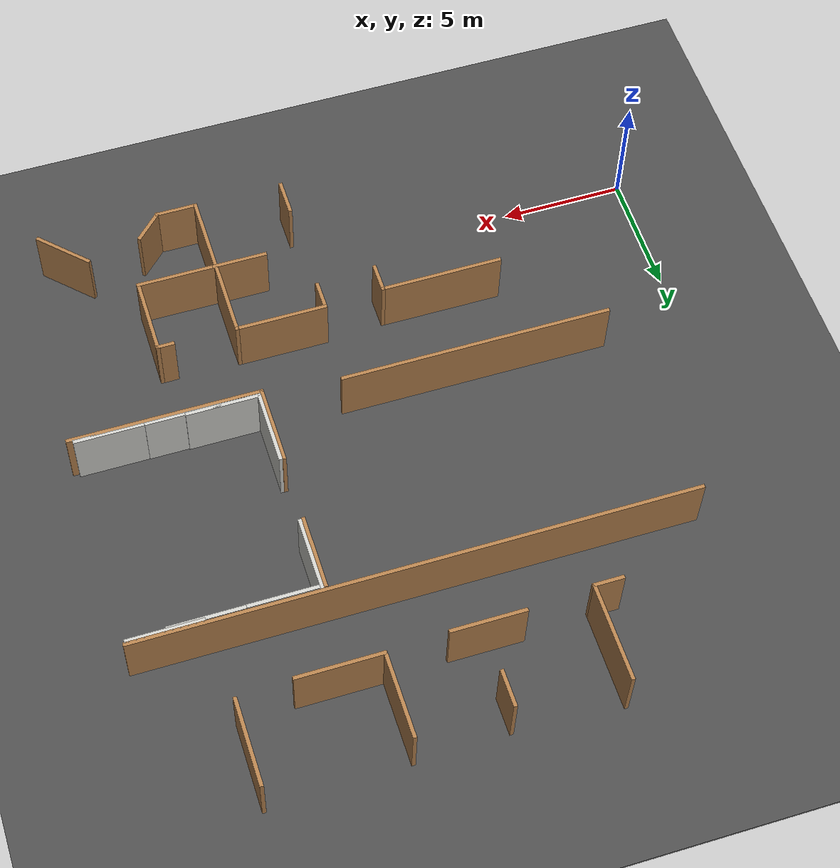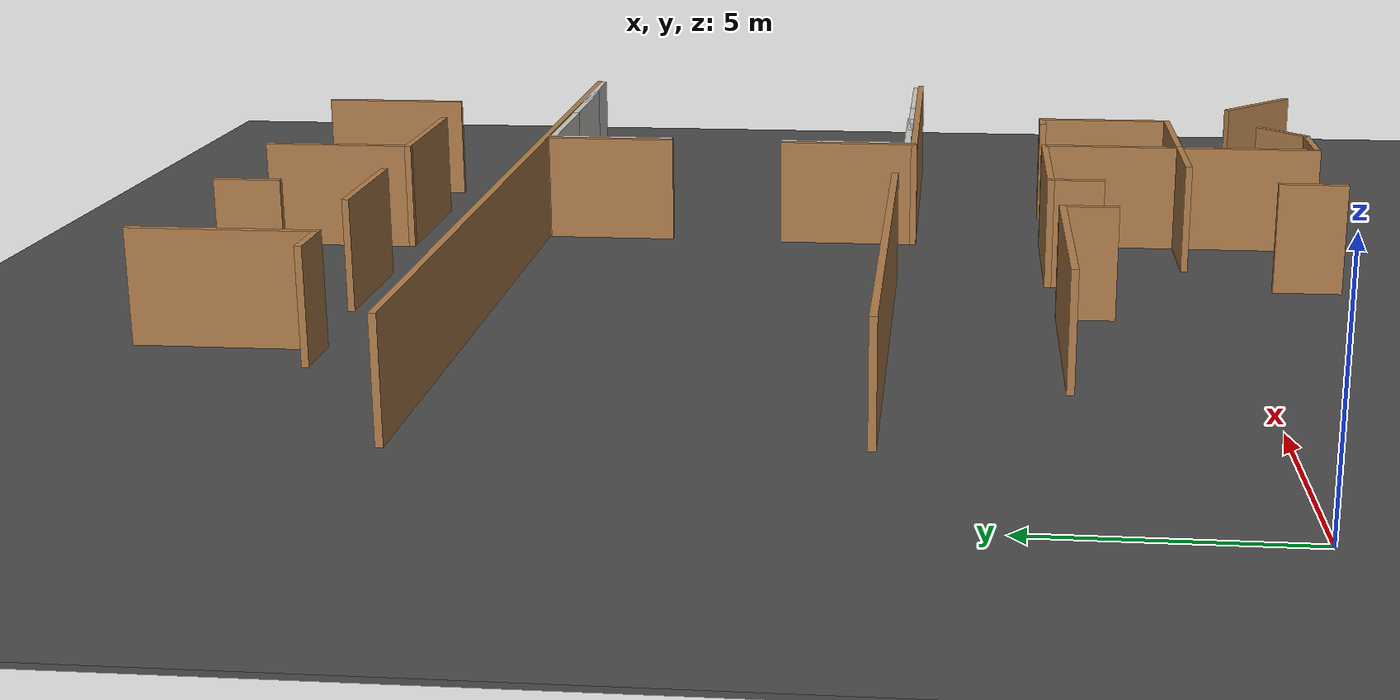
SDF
<sdf version="1.6">
 <world name="default">
  <model name="ground_plane">
   <static>1</static>
   <link name="link">
    <collision name="collision">
     <geometry><plane><normal>0 0 1</normal><size>100 100</size></plane></geometry>
     <surface><friction><ode><mu>100</mu><mu2>50</mu2></ode></friction></surface>
    </collision>
    <visual name="visual">
     <cast_shadows>0</cast_shadows>
     <geometry><plane><normal>0 0 1</normal><size>100 100</size></plane></geometry>
     <material>
      <script><uri>file://media/materials/scripts/gazebo.material</uri><name>Gazebo/Grey</name></script>
     </material>
    </visual>
   </link>
  </model>
  <model name="asphalt_plane">
   <static>1</static>
   <link name="link">
    <collision name="collision"><geometry><box><size>100 100 0.1</size></box></geometry></collision>
    <visual name="visual">
     <cast_shadows>0</cast_shadows>
     <geometry><box><size>100 100 0.1</size></box></geometry>
     <material>
      <script>
       <uri>model://asphalt_plane/materials/scripts</uri>
       <uri>model://asphalt_plane/materials/textures</uri>
       <name>vrc/asphalt</name>
      </script>
     </material>
    </visual>
   </link>
  </model>
  <model name="concrete_wall_6_clone_15">
   <pose>19.0082 7.09385 0 0 -0 1.57079</pose>
   <link name="Wall_0">
    <collision name="Wall_0_Collision">
     <geometry><box><size>3 0.15 2.5</size></box></geometry>
     <pose>0 0 1.25 0 -0 0</pose>
    </collision>
    <visual name="Wall_0_Visual">
     <pose>0 0 1.25 0 -0 0</pose>
     <geometry><box><size>3 0.15 2.5</size></box></geometry>
     <material>
      <script><uri>file://media/materials/scripts/gazebo.material</uri><name>Gazebo/CeilingTiled</name></script>
      <ambient>1 1 1 1</ambient>
     </material>
     <meta><layer>0</layer></meta>
    </visual>
    <pose>0 0 0 0 -0 1.5708</pose>
   </link>
   <static>1</static>
  </model>
  <model name="concrete_wall_6_clone_16">
   <pose>20.5949 7.06095 0 0 -0 1.57079</pose>
   <link name="Wall_0">
    <collision name="Wall_0_Collision">
     <geometry><box><size>3 0.15 2.5</size></box></geometry>
     <pose>0 0 1.25 0 -0 0</pose>
    </collision>
    <visual name="Wall_0_Visual">
     <pose>0 0 1.25 0 -0 0</pose>
     <geometry><box><size>3 0.15 2.5</size></box></geometry>
     <material>
      <script><uri>file://media/materials/scripts/gazebo.material</uri><name>Gazebo/CeilingTiled</name></script>
      <ambient>1 1 1 1</ambient>
     </material>
     <meta><layer>0</layer></meta>
    </visual>
    <pose>0 0 0 0 -0 1.5708</pose>
   </link>
   <static>1</static>
  </model>
  <model name="concrete_wall_6_clone_17">
   <pose>23.3706 7.05229 0 0 -0 1.57079</pose>
   <link name="Wall_0">
    <collision name="Wall_0_Collision">
     <geometry><box><size>3 0.15 2.5</size></box></geometry>
     <pose>0 0 1.25 0 -0 0</pose>
    </collision>
    <visual name="Wall_0_Visual">
     <pose>0 0 1.25 0 -0 0</pose>
     <geometry><box><size>3 0.15 2.5</size></box></geometry>
     <material>
      <script><uri>file://media/materials/scripts/gazebo.material</uri><name>Gazebo/CeilingTiled</name></script>
      <ambient>1 1 1 1</ambient>
     </material>
     <meta><layer>0</layer></meta>
    </visual>
    <pose>0 0 0 0 -0 1.5708</pose>
   </link>
   <static>1</static>
  </model>
  <model name="concrete_wall_6_clone_18">
   <pose>23.5039 15.7147 0 0 -0 1.57079</pose>
   <link name="Wall_0">
    <collision name="Wall_0_Collision">
     <geometry><box><size>3 0.15 2.5</size></box></geometry>
     <pose>0 0 1.25 0 -0 0</pose>
    </collision>
    <visual name="Wall_0_Visual">
     <pose>0 0 1.25 0 -0 0</pose>
     <geometry><box><size>3 0.15 2.5</size></box></geometry>
     <material>
      <script><uri>file://media/materials/scripts/gazebo.material</uri><name>Gazebo/CeilingTiled</name></script>
      <ambient>1 1 1 1</ambient>
     </material>
     <meta><layer>0</layer></meta>
    </visual>
    <pose>0 0 0 0 -0 1.5708</pose>
   </link>
   <static>1</static>
  </model>
  <model name="concrete_wall_6_clone_19">
   <pose>21.9639 15.6573 0 0 -0 1.57079</pose>
   <link name="Wall_0">
    <collision name="Wall_0_Collision">
     <geometry><box><size>3 0.15 2.5</size></box></geometry>
     <pose>0 0 1.25 0 -0 0</pose>
    </collision>
    <visual name="Wall_0_Visual">
     <pose>0 0 1.25 0 -0 0</pose>
     <geometry><box><size>3 0.15 2.5</size></box></geometry>
     <material>
      <script><uri>file://media/materials/scripts/gazebo.material</uri><name>Gazebo/CeilingTiled</name></script>
      <ambient>1 1 1 1</ambient>
     </material>
     <meta><layer>0</layer></meta>
    </visual>
    <pose>0 0 0 0 -0 1.5708</pose>
   </link>
   <static>1</static>
  </model>
  <model name="concrete_wall_6_clone_20">
   <pose>19.0587 15.6479 0 0 -0 1.57079</pose>
   <link name="Wall_0">
    <collision name="Wall_0_Collision">
     <geometry><box><size>3 0.15 2.5</size></box></geometry>
     <pose>0 0 1.25 0 -0 0</pose>
    </collision>
    <visual name="Wall_0_Visual">
     <pose>0 0 1.25 0 -0 0</pose>
     <geometry><box><size>3 0.15 2.5</size></box></geometry>
     <material>
      <script><uri>file://media/materials/scripts/gazebo.material</uri><name>Gazebo/CeilingTiled</name></script>
      <ambient>1 1 1 1</ambient>
     </material>
     <meta><layer>0</layer></meta>
    </visual>
    <pose>0 0 0 0 -0 1.5708</pose>
   </link>
   <static>1</static>
  </model>
  <model name="concrete_wall_16">
   <pose>17.5839 8.5954 0 0 -0 0</pose>
   <link name="Wall_0">
    <collision name="Wall_0_Collision">
     <geometry><box><size>3 0.15 2.5</size></box></geometry>
     <pose>0 0 1.25 0 -0 0</pose>
    </collision>
    <visual name="Wall_0_Visual">
     <pose>0 0 1.25 0 -0 0</pose>
     <geometry><box><size>3 0.15 2.5</size></box></geometry>
     <material>
      <script><uri>file://media/materials/scripts/gazebo.material</uri><name>Gazebo/CeilingTiled</name></script>
      <ambient>1 1 1 1</ambient>
     </material>
     <meta><layer>0</layer></meta>
    </visual>
    <pose>0 0 0 0 -0 1.5708</pose>
   </link>
   <static>1</static>
  </model>
  <model name="concrete_wall_18">
   <pose>17.6374 14.261 0 0 -0 0</pose>
   <link name="Wall_0">
    <collision name="Wall_0_Collision">
     <geometry><box><size>3 0.15 2.5</size></box></geometry>
     <pose>0 0 1.25 0 -0 0</pose>
    </collision>
    <visual name="Wall_0_Visual">
     <pose>0 0 1.25 0 -0 0</pose>
     <geometry><box><size>3 0.15 2.5</size></box></geometry>
     <material>
      <script><uri>file://media/materials/scripts/gazebo.material</uri><name>Gazebo/CeilingTiled</name></script>
      <ambient>1 1 1 1</ambient>
     </material>
     <meta><layer>0</layer></meta>
    </visual>
    <pose>0 0 0 0 -0 1.5708</pose>
   </link>
   <static>1</static>
  </model>
  <model name="willowgarage_v1_1">
   <pose>-14.3408 -3.86286 0 0 -0 0</pose>
   <link name="Wall_100">
    <collision name="Wall_100_Collision">
     <geometry><box><size>3.5 0.15 2.5</size></box></geometry>
     <pose>0 0 1.25 0 -0 0</pose>
    </collision>
    <visual name="Wall_100_Visual">
     <pose>0 0 1.25 0 -0 0</pose>
     <geometry><box><size>3.5 0.15 2.5</size></box></geometry>
     <material>
      <script><uri>file://media/materials/scripts/gazebo.material</uri><name>Gazebo/Wood</name></script>
      <ambient>1 1 1 1</ambient>
     </material>
     <meta><layer>0</layer></meta>
    </visual>
    <pose>32.2598 22.7229 0 0 -0 3.14159</pose>
   </link>
   <link name="Wall_101">
    <collision name="Wall_101_Collision">
     <geometry><box><size>3.5 0.15 2.5</size></box></geometry>
     <pose>0 0 1.25 0 -0 0</pose>
    </collision>
    <visual name="Wall_101_Visual">
     <pose>0 0 1.25 0 -0 0</pose>
     <geometry><box><size>3.5 0.15 2.5</size></box></geometry>
     <material>
      <script><uri>file://media/materials/scripts/gazebo.material</uri><name>Gazebo/Wood</name></script>
      <ambient>1 1 1 1</ambient>
     </material>
     <meta><layer>0</layer></meta>
    </visual>
    <pose>30.5848 24.3979 0 0 -0 1.5708</pose>
   </link>
   <link name="Wall_105">
    <collision name="Wall_105_Collision">
     <geometry><box><size>3 0.15 2.5</size></box></geometry>
     <pose>0 0 1.25 0 -0 0</pose>
    </collision>
    <visual name="Wall_105_Visual">
     <pose>0 0 1.25 0 -0 0</pose>
     <geometry><box><size>3 0.15 2.5</size></box></geometry>
     <material>
      <script><uri>file://media/materials/scripts/gazebo.material</uri><name>Gazebo/Wood</name></script>
      <ambient>1 1 1 1</ambient>
     </material>
     <meta><layer>0</layer></meta>
    </visual>
    <pose>26.6647 22.5998 0 0 -0 3.14159</pose>
   </link>
   <link name="Wall_107">
    <collision name="Wall_107_Collision">
     <geometry><box><size>1.5 0.15 2.5</size></box></geometry>
     <pose>0 0 1.25 0 -0 0</pose>
    </collision>
    <visual name="Wall_107_Visual">
     <pose>0 0 1.25 0 -0 0</pose>
     <geometry><box><size>1.5 0.15 2.5</size></box></geometry>
     <material>
      <script><uri>file://media/materials/scripts/gazebo.material</uri><name>Gazebo/Wood</name></script>
      <ambient>1 1 1 1</ambient>
     </material>
     <meta><layer>0</layer></meta>
    </visual>
    <pose>26.8591 25.3088 0 0 0 -1.5708</pose>
   </link>
   <link name="Wall_109">
    <collision name="Wall_109_Collision">
     <geometry><box><size>4 0.15 2.5</size></box></geometry>
     <pose>0 0 1.25 0 -0 0</pose>
    </collision>
    <visual name="Wall_109_Visual">
     <pose>0 0 1.25 0 -0 0</pose>
     <geometry><box><size>4 0.15 2.5</size></box></geometry>
     <material>
      <script><uri>file://media/materials/scripts/gazebo.material</uri><name>Gazebo/Wood</name></script>
      <ambient>1 1 1 1</ambient>
     </material>
     <meta><layer>0</layer></meta>
    </visual>
    <pose>22.5522 24.305 0 0 0 -1.5708</pose>
   </link>
   <link name="Wall_110">
    <collision name="Wall_110_Collision">
     <geometry><box><size>1.25 0.15 2.5</size></box></geometry>
     <pose>0 0 1.25 0 -0 0</pose>
    </collision>
    <visual name="Wall_110_Visual">
     <pose>0 0 1.25 0 -0 0</pose>
     <geometry><box><size>1.25 0.15 2.5</size></box></geometry>
     <material>
      <script><uri>file://media/materials/scripts/gazebo.material</uri><name>Gazebo/Wood</name></script>
      <ambient>1 1 1 1</ambient>
     </material>
     <meta><layer>0</layer></meta>
    </visual>
    <pose>22.0022 22.38 0 0 -0 3.14159</pose>
   </link>
   <link name="Wall_174">
    <collision name="Wall_174_Collision">
     <geometry><box><size>22.25 0.15 2.5</size></box></geometry>
     <pose>0 0 1.25 0 -0 0</pose>
    </collision>
    <visual name="Wall_174_Visual">
     <pose>0 0 1.25 0 -0 0</pose>
     <geometry><box><size>22.25 0.15 2.5</size></box></geometry>
     <material>
      <script><uri>file://media/materials/scripts/gazebo.material</uri><name>Gazebo/Wood</name></script>
      <ambient>1 1 1 1</ambient>
     </material>
     <meta><layer>0</layer></meta>
    </visual>
    <pose>28.2902 19.6947 0 0 -0 3.14159</pose>
   </link>
   <link name="Wall_178">
    <collision name="Wall_178_Collision">
     <geometry><box><size>3.25 0.15 2.5</size></box></geometry>
     <pose>0 0 1.25 0 -0 0</pose>
    </collision>
    <visual name="Wall_178_Visual">
     <pose>0 0 1.25 0 -0 0</pose>
     <geometry><box><size>3.25 0.15 2.5</size></box></geometry>
     <material>
      <script><uri>file://media/materials/scripts/gazebo.material</uri><name>Gazebo/Wood</name></script>
      <ambient>1 1 1 1</ambient>
     </material>
     <meta><layer>0</layer></meta>
    </visual>
    <pose>31.7855 12.3459 0 0 -0 1.5708</pose>
   </link>
   <link name="Wall_180">
    <collision name="Wall_180_Collision">
     <geometry><box><size>3 0.15 2.5</size></box></geometry>
     <pose>0 0 1.25 0 -0 0</pose>
    </collision>
    <visual name="Wall_180_Visual">
     <pose>0 0 1.25 0 -0 0</pose>
     <geometry><box><size>3 0.15 2.5</size></box></geometry>
     <material>
      <script><uri>file://media/materials/scripts/gazebo.material</uri><name>Gazebo/Wood</name></script>
      <ambient>1 1 1 1</ambient>
     </material>
     <meta><layer>0</layer></meta>
    </visual>
    <pose>31.8338 18.0851 0 0 0 -1.5708</pose>
   </link>
   <link name="Wall_188">
    <collision name="Wall_188_Collision">
     <geometry><box><size>11 0.15 2.5</size></box></geometry>
     <pose>0 0 1.25 0 -0 0</pose>
    </collision>
    <visual name="Wall_188_Visual">
     <pose>0 0 1.25 0 -0 0</pose>
     <geometry><box><size>11 0.15 2.5</size></box></geometry>
     <material>
      <script><uri>file://media/materials/scripts/gazebo.material</uri><name>Gazebo/Wood</name></script>
      <ambient>1 1 1 1</ambient>
     </material>
     <meta><layer>0</layer></meta>
    </visual>
    <pose>23.2094 11.1423 0 0 -0 3.14159</pose>
   </link>
   <link name="Wall_19">
    <collision name="Wall_19_Collision">
     <geometry><box><size>7.75 0.15 2.5</size></box></geometry>
     <pose>0 0 1.25 0 -0 0</pose>
    </collision>
    <visual name="Wall_19_Visual">
     <pose>0 0 1.25 0 -0 0</pose>
     <geometry><box><size>7.75 0.15 2.5</size></box></geometry>
     <material>
      <script><uri>file://media/materials/scripts/gazebo.material</uri><name>Gazebo/Wood</name></script>
      <ambient>1 1 1 1</ambient>
     </material>
     <meta><layer>0</layer></meta>
    </visual>
    <pose>35.5855 10.7959 0 0 -0 3.14159</pose>
   </link>
   <link name="Wall_202">
    <collision name="Wall_202_Collision">
     <geometry><box><size>3.75 0.15 2.5</size></box></geometry>
     <pose>0 0 1.25 0 -0 0</pose>
    </collision>
    <visual name="Wall_202_Visual">
     <pose>0 0 1.25 0 -0 0</pose>
     <geometry><box><size>3.75 0.15 2.5</size></box></geometry>
     <material>
      <script><uri>file://media/materials/scripts/gazebo.material</uri><name>Gazebo/Wood</name></script>
      <ambient>1 1 1 1</ambient>
     </material>
     <meta><layer>0</layer></meta>
    </visual>
    <pose>30.1156 7.71139 0 0 -0 3.14159</pose>
   </link>
   <link name="Wall_203">
    <collision name="Wall_203_Collision">
     <geometry><box><size>1.25 0.15 2.5</size></box></geometry>
     <pose>0 0 1.25 0 -0 0</pose>
    </collision>
    <visual name="Wall_203_Visual">
     <pose>0 0 1.25 0 -0 0</pose>
     <geometry><box><size>1.25 0.15 2.5</size></box></geometry>
     <material>
      <script><uri>file://media/materials/scripts/gazebo.material</uri><name>Gazebo/Wood</name></script>
      <ambient>1 1 1 1</ambient>
     </material>
     <meta><layer>0</layer></meta>
    </visual>
    <pose>28.3156 7.16139 0 0 0 -1.5708</pose>
   </link>
   <link name="Wall_206">
    <collision name="Wall_206_Collision">
     <geometry><box><size>1.5 0.15 2.5</size></box></geometry>
     <pose>0 0 1.25 0 -0 0</pose>
    </collision>
    <visual name="Wall_206_Visual">
     <pose>0 0 1.25 0 -0 0</pose>
     <geometry><box><size>1.5 0.15 2.5</size></box></geometry>
     <material>
      <script><uri>file://media/materials/scripts/gazebo.material</uri><name>Gazebo/Wood</name></script>
      <ambient>1 1 1 1</ambient>
     </material>
     <meta><layer>0</layer></meta>
    </visual>
    <pose>28.3156 2.03639 0 0 -0 1.5708</pose>
   </link>
   <link name="Wall_208">
    <collision name="Wall_208_Collision">
     <geometry><box><size>2.25 0.15 2.5</size></box></geometry>
     <pose>0 0 1.25 0 -0 0</pose>
    </collision>
    <visual name="Wall_208_Visual">
     <pose>0 0 1.25 0 -0 0</pose>
     <geometry><box><size>2.25 0.15 2.5</size></box></geometry>
     <material>
      <script><uri>file://media/materials/scripts/gazebo.material</uri><name>Gazebo/Wood</name></script>
      <ambient>1 1 1 1</ambient>
     </material>
     <meta><layer>0</layer></meta>
    </visual>
    <pose>30.9367 4.55145 0 0 -0 3.14159</pose>
   </link>
   <link name="Wall_210">
    <collision name="Wall_210_Collision">
     <geometry><box><size>1.25 0.15 2.5</size></box></geometry>
     <pose>0 0 1.25 0 -0 0</pose>
    </collision>
    <visual name="Wall_210_Visual">
     <pose>0 0 1.25 0 -0 0</pose>
     <geometry><box><size>1.25 0.15 2.5</size></box></geometry>
     <material>
      <script><uri>file://media/materials/scripts/gazebo.material</uri><name>Gazebo/Wood</name></script>
      <ambient>1 1 1 1</ambient>
     </material>
     <meta><layer>0</layer></meta>
    </visual>
    <pose>25.8955 7.01631 0 0 0 -1.5708</pose>
   </link>
   <link name="Wall_212">
    <collision name="Wall_212_Collision">
     <geometry><box><size>5 0.15 2.5</size></box></geometry>
     <pose>0 0 1.25 0 -0 0</pose>
    </collision>
    <visual name="Wall_212_Visual">
     <pose>0 0 1.25 0 -0 0</pose>
     <geometry><box><size>5 0.15 2.5</size></box></geometry>
     <material>
      <script><uri>file://media/materials/scripts/gazebo.material</uri><name>Gazebo/Wood</name></script>
      <ambient>1 1 1 1</ambient>
     </material>
     <meta><layer>0</layer></meta>
    </visual>
    <pose>23.4705 7.56631 0 0 -0 3.14159</pose>
   </link>
   <link name="Wall_22">
    <collision name="Wall_22_Collision">
     <geometry><box><size>6.5 0.15 2.5</size></box></geometry>
     <pose>0 0 1.25 0 -0 0</pose>
    </collision>
    <visual name="Wall_22_Visual">
     <pose>0 0 1.25 0 -0 0</pose>
     <geometry><box><size>6.5 0.15 2.5</size></box></geometry>
     <material>
      <script><uri>file://media/materials/scripts/gazebo.material</uri><name>Gazebo/Wood</name></script>
      <ambient>1 1 1 1</ambient>
     </material>
     <meta><layer>0</layer></meta>
    </visual>
    <pose>31.9156 4.53639 0 0 0 -1.5708</pose>
   </link>
   <link name="Wall_380">
    <collision name="Wall_380_Collision">
     <geometry><box><size>1.75 0.15 2.5</size></box></geometry>
     <pose>0 0 1.25 0 -0 0</pose>
    </collision>
    <visual name="Wall_380_Visual">
     <pose>0 0 1.25 0 -0 0</pose>
     <geometry><box><size>1.75 0.15 2.5</size></box></geometry>
     <material>
      <script><uri>file://media/materials/scripts/gazebo.material</uri><name>Gazebo/Wood</name></script>
      <ambient>1 1 1 1</ambient>
     </material>
     <meta><layer>0</layer></meta>
    </visual>
    <pose>32.7157 1.36139 0 0 -0 0</pose>
   </link>
   <link name="Wall_421">
    <collision name="Wall_421_Collision">
     <geometry><box><size>3.25 0.15 2.5</size></box></geometry>
     <pose>0 0 1.25 0 -0 0</pose>
    </collision>
    <visual name="Wall_421_Visual">
     <pose>0 0 1.25 0 -0 0</pose>
     <geometry><box><size>3.25 0.15 2.5</size></box></geometry>
     <material>
      <script><uri>file://media/materials/scripts/gazebo.material</uri><name>Gazebo/Wood</name></script>
      <ambient>1 1 1 1</ambient>
     </material>
     <meta><layer>0</layer></meta>
    </visual>
    <pose>33.5367 4.55145 0 0 -0 0</pose>
   </link>
   <link name="Wall_422">
    <collision name="Wall_422_Collision">
     <geometry><box><size>3.25 0.15 2.5</size></box></geometry>
     <pose>0 0 1.25 0 -0 0</pose>
    </collision>
    <visual name="Wall_422_Visual">
     <pose>0 0 1.25 0 -0 0</pose>
     <geometry><box><size>3.25 0.15 2.5</size></box></geometry>
     <material>
      <script><uri>file://media/materials/scripts/gazebo.material</uri><name>Gazebo/Wood</name></script>
      <ambient>1 1 1 1</ambient>
     </material>
     <meta><layer>0</layer></meta>
    </visual>
    <pose>35.0867 6.10145 0 0 -0 1.5708</pose>
   </link>
   <link name="Wall_423">
    <collision name="Wall_423_Collision">
     <geometry><box><size>0.75 0.15 2.5</size></box></geometry>
     <pose>0 0 1.25 0 -0 0</pose>
    </collision>
    <visual name="Wall_423_Visual">
     <pose>0 0 1.25 0 -0 0</pose>
     <geometry><box><size>0.75 0.15 2.5</size></box></geometry>
     <material>
      <script><uri>file://media/materials/scripts/gazebo.material</uri><name>Gazebo/Wood</name></script>
      <ambient>1 1 1 1</ambient>
     </material>
     <meta><layer>0</layer></meta>
    </visual>
    <pose>34.7867 7.65145 0 0 -0 3.14159</pose>
   </link>
   <link name="Wall_425">
    <collision name="Wall_425_Collision">
     <geometry><box><size>2.5 0.15 2.5</size></box></geometry>
     <pose>0 0 1.25 0 -0 0</pose>
    </collision>
    <visual name="Wall_425_Visual">
     <pose>0 0 1.25 0 -0 0</pose>
     <geometry><box><size>2.5 0.15 2.5</size></box></geometry>
     <material>
      <script><uri>file://media/materials/scripts/gazebo.material</uri><name>Gazebo/Wood</name></script>
      <ambient>1 1 1 1</ambient>
     </material>
     <meta><layer>0</layer></meta>
    </visual>
    <pose>37.5395 1.98561 0 0 -0 2.35619</pose>
   </link>
   <link name="Wall_427">
    <collision name="Wall_427_Collision">
     <geometry><box><size>1.5 0.15 2.5</size></box></geometry>
     <pose>0 0 1.25 0 -0 0</pose>
    </collision>
    <visual name="Wall_427_Visual">
     <pose>0 0 1.25 0 -0 0</pose>
     <geometry><box><size>1.5 0.15 2.5</size></box></geometry>
     <material>
      <script><uri>file://media/materials/scripts/gazebo.material</uri><name>Gazebo/Wood</name></script>
      <ambient>1 1 1 1</ambient>
     </material>
     <meta><layer>0</layer></meta>
    </visual>
    <pose>33.9929 1.83869 0 0 -0 0.785398</pose>
   </link>
   <link name="Wall_96">
    <collision name="Wall_96_Collision">
     <geometry><box><size>3.5 0.15 2.5</size></box></geometry>
     <pose>0 0 1.25 0 -0 0</pose>
    </collision>
    <visual name="Wall_96_Visual">
     <pose>0 0 1.25 0 -0 0</pose>
     <geometry><box><size>3.5 0.15 2.5</size></box></geometry>
     <material>
      <script><uri>file://media/materials/scripts/gazebo.material</uri><name>Gazebo/Wood</name></script>
      <ambient>1 1 1 1</ambient>
     </material>
     <meta><layer>0</layer></meta>
    </visual>
    <pose>36.1498 24.555 0 0 0 -1.5708</pose>
   </link>
   <static>1</static>
  </model>
 </world>
</sdf>
